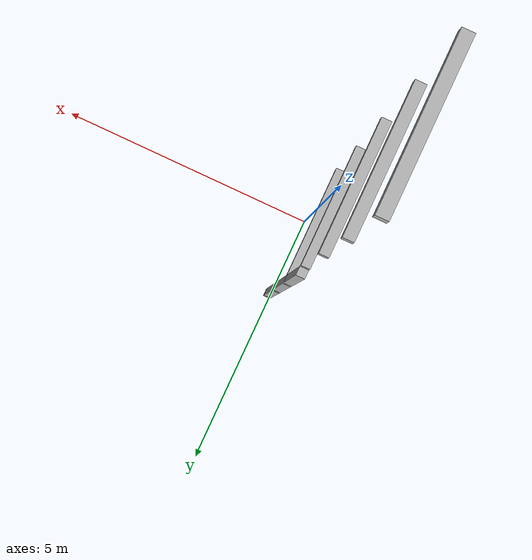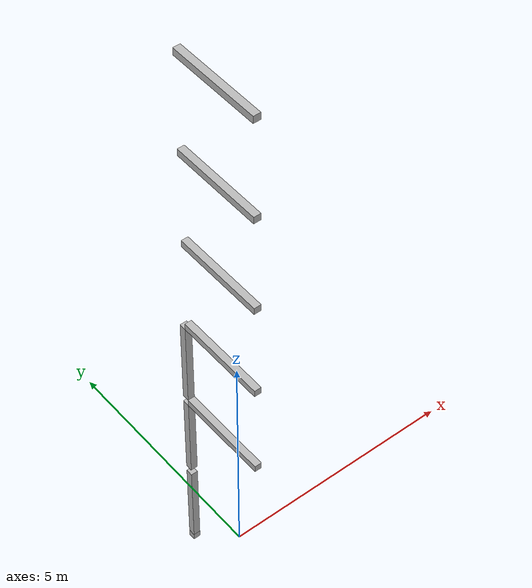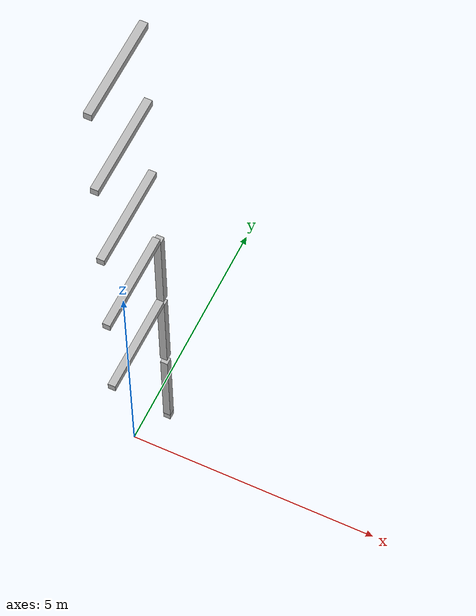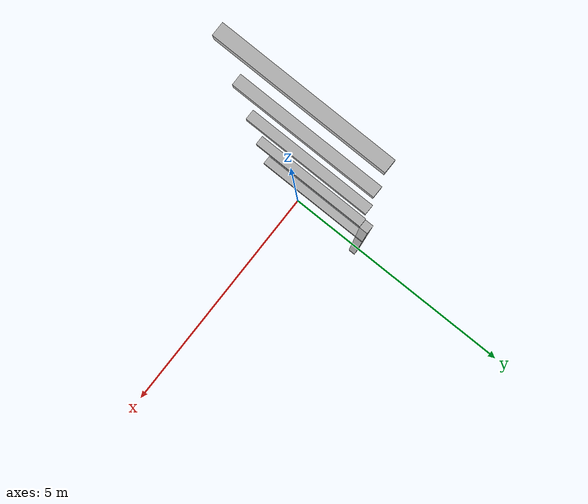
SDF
<sdf version="1.7">
 <world name="default">
  <model name="orthogonal_747_2.000.15_TS">
   <static>1</static>
   <link name="u_link_0_3_3">
    <inertial>
     <mass>1</mass>
     <inertia>
      <ixx>0.166667</ixx>
      <ixy>0</ixy>
      <ixz>0</ixz>
      <iyy>0.166667</iyy>
      <iyz>0</iyz>
      <izz>0.166667</izz>
     </inertia>
    </inertial>
    <pose>6.45 6.45 1.075 0 -0 0</pose>
    <visual name="visual_0">
     <laser_retro>561</laser_retro>
     <geometry><box><size>0.15 1e-06 0.15</size></box></geometry>
     <material>
      <script><name>Gazebo/Grey</name><uri>file://media/materials/scripts/gazebo.material</uri></script>
      <shader type="pixel"><normal_map>__default__</normal_map></shader>
      <ambient>0.678 0.498 0.659 1</ambient>
      <diffuse>0.7 0.7 0.7 1</diffuse>
      <specular>0.01 0.01 0.01 1</specular>
      <emissive>0 0 0 1</emissive>
     </material>
     <pose>0 -0.075 0 0 -0 0</pose>
     <transparency>1</transparency>
    </visual>
    <visual name="visual_1">
     <laser_retro>562</laser_retro>
     <geometry><box><size>0.15 1e-06 0.15</size></box></geometry>
     <material>
      <script><name>Gazebo/Grey</name><uri>file://media/materials/scripts/gazebo.material</uri></script>
      <shader type="pixel"><normal_map>__default__</normal_map></shader>
      <ambient>0.447 0.624 0.812 1</ambient>
      <diffuse>0.7 0.7 0.7 1</diffuse>
      <specular>0.01 0.01 0.01 1</specular>
      <emissive>0 0 0 1</emissive>
     </material>
     <pose>0 0.075 0 0 -0 0</pose>
     <transparency>1</transparency>
    </visual>
    <visual name="visual_2">
     <laser_retro>563</laser_retro>
     <geometry><box><size>0.15 0.15 1e-06</size></box></geometry>
     <material>
      <script><name>Gazebo/Grey</name><uri>file://media/materials/scripts/gazebo.material</uri></script>
      <shader type="pixel"><normal_map>__default__</normal_map></shader>
      <ambient>0.988 0.686 0.243 1</ambient>
      <diffuse>0.7 0.7 0.7 1</diffuse>
      <specular>0.01 0.01 0.01 1</specular>
      <emissive>0 0 0 1</emissive>
     </material>
     <pose>0 0 -0.075 0 -0 0</pose>
     <transparency>1</transparency>
    </visual>
    <visual name="visual_3">
     <laser_retro>564</laser_retro>
     <geometry><box><size>1e-06 0.15 0.15</size></box></geometry>
     <material>
      <script><name>Gazebo/Grey</name><uri>file://media/materials/scripts/gazebo.material</uri></script>
      <shader type="pixel"><normal_map>__default__</normal_map></shader>
      <ambient>0.988 0.914 0.31 1</ambient>
      <diffuse>0.7 0.7 0.7 1</diffuse>
      <specular>0.01 0.01 0.01 1</specular>
      <emissive>0 0 0 1</emissive>
     </material>
     <pose>0.075 0 0 0 -0 0</pose>
     <transparency>1</transparency>
    </visual>
    <visual name="visual_4">
     <laser_retro>565</laser_retro>
     <geometry><box><size>0.15 0.15 1e-06</size></box></geometry>
     <material>
      <script><name>Gazebo/Grey</name><uri>file://media/materials/scripts/gazebo.material</uri></script>
      <shader type="pixel"><normal_map>__default__</normal_map></shader>
      <ambient>0.937 0.161 0.161 1</ambient>
      <diffuse>0.7 0.7 0.7 1</diffuse>
      <specular>0.01 0.01 0.01 1</specular>
      <emissive>0 0 0 1</emissive>
     </material>
     <pose>0 0 0.075 0 -0 0</pose>
     <transparency>1</transparency>
    </visual>
    <visual name="visual_5">
     <laser_retro>566</laser_retro>
     <geometry><box><size>1e-06 0.15 0.15</size></box></geometry>
     <material>
      <script><name>Gazebo/Grey</name><uri>file://media/materials/scripts/gazebo.material</uri></script>
      <shader type="pixel"><normal_map>__default__</normal_map></shader>
      <ambient>0.541 0.886 0.204 1</ambient>
      <diffuse>0.7 0.7 0.7 1</diffuse>
      <specular>0.01 0.01 0.01 1</specular>
      <emissive>0 0 0 1</emissive>
     </material>
     <pose>-0.075 0 0 0 -0 0</pose>
     <transparency>1</transparency>
    </visual>
    <visual name="visual_texture">
     <geometry><box><size>0.149985 0.149985 0.149985</size></box></geometry>
     <material>
      <script>
       <uri>model://BASE_MODELS/simple_block_v2_textured/materials/scripts</uri>
       <uri>model://BASE_MODELS/simple_block_v2_textured/materials/textures</uri>
       <name>metal</name>
      </script>
     </material>
     <laser_retro>567</laser_retro>
    </visual>
    <collision name="collision">
     <geometry><box><size>0.15 0.15 0.15</size></box></geometry>
     <surface>
      <friction>
       <ode><mu>1</mu><mu2>1</mu2><fdir1>0 0 0</fdir1><slip1>0</slip1><slip2>0</slip2></ode>
       <torsional>
        <coefficient>1</coefficient>
        <patch_radius>0</patch_radius>
        <surface_radius>0</surface_radius>
        <use_patch_radius>1</use_patch_radius>
        <ode><slip>0</slip></ode>
       </torsional>
      </friction>
      <bounce><restitution_coefficient>0</restitution_coefficient><threshold>1e+06</threshold></bounce>
      <contact>
       <collide_without_contact>0</collide_without_contact>
       <collide_without_contact_bitmask>1</collide_without_contact_bitmask>
       <collide_bitmask>1</collide_bitmask>
       <ode>
        <soft_cfm>0</soft_cfm>
        <soft_erp>0.2</soft_erp>
        <kp>1e+13</kp>
        <kd>1</kd>
        <max_vel>0.01</max_vel>
        <min_depth>0</min_depth>
       </ode>
       <bullet>
        <split_impulse>1</split_impulse>
        <split_impulse_penetration_threshold>-0.01</split_impulse_penetration_threshold>
        <soft_cfm>0</soft_cfm>
        <soft_erp>0.2</soft_erp>
        <kp>1e+13</kp>
        <kd>1</kd>
       </bullet>
      </contact>
     </surface>
    </collision>
   </link>
   <link name="z_link_1_3_3">
    <inertial>
     <mass>1</mass>
     <inertia>
      <ixx>0.166667</ixx>
      <ixy>0</ixy>
      <ixz>0</ixz>
      <iyy>0.166667</iyy>
      <iyz>0</iyz>
      <izz>0.166667</izz>
     </inertia>
    </inertial>
    <pose>6.45 6.45 2.15 0 -0 0</pose>
    <visual name="visual_0">
     <laser_retro>1401</laser_retro>
     <geometry><box><size>0.15 1e-06 2</size></box></geometry>
     <material>
      <script><name>Gazebo/Grey</name><uri>file://media/materials/scripts/gazebo.material</uri></script>
      <shader type="pixel"><normal_map>__default__</normal_map></shader>
      <ambient>0.678 0.498 0.659 1</ambient>
      <diffuse>0.7 0.7 0.7 1</diffuse>
      <specular>0.01 0.01 0.01 1</specular>
      <emissive>0 0 0 1</emissive>
     </material>
     <pose>0 -0.075 0 0 -0 0</pose>
     <transparency>1</transparency>
    </visual>
    <visual name="visual_1">
     <laser_retro>1402</laser_retro>
     <geometry><box><size>0.15 1e-06 2</size></box></geometry>
     <material>
      <script><name>Gazebo/Grey</name><uri>file://media/materials/scripts/gazebo.material</uri></script>
      <shader type="pixel"><normal_map>__default__</normal_map></shader>
      <ambient>0.447 0.624 0.812 1</ambient>
      <diffuse>0.7 0.7 0.7 1</diffuse>
      <specular>0.01 0.01 0.01 1</specular>
      <emissive>0 0 0 1</emissive>
     </material>
     <pose>0 0.075 0 0 -0 0</pose>
     <transparency>1</transparency>
    </visual>
    <visual name="visual_2">
     <laser_retro>1403</laser_retro>
     <geometry><box><size>0.15 0.15 1e-06</size></box></geometry>
     <material>
      <script><name>Gazebo/Grey</name><uri>file://media/materials/scripts/gazebo.material</uri></script>
      <shader type="pixel"><normal_map>__default__</normal_map></shader>
      <ambient>0.988 0.686 0.243 1</ambient>
      <diffuse>0.7 0.7 0.7 1</diffuse>
      <specular>0.01 0.01 0.01 1</specular>
      <emissive>0 0 0 1</emissive>
     </material>
     <pose>0 0 -1 0 -0 0</pose>
     <transparency>1</transparency>
    </visual>
    <visual name="visual_3">
     <laser_retro>1404</laser_retro>
     <geometry><box><size>1e-06 0.15 2</size></box></geometry>
     <material>
      <script><name>Gazebo/Grey</name><uri>file://media/materials/scripts/gazebo.material</uri></script>
      <shader type="pixel"><normal_map>__default__</normal_map></shader>
      <ambient>0.988 0.914 0.31 1</ambient>
      <diffuse>0.7 0.7 0.7 1</diffuse>
      <specular>0.01 0.01 0.01 1</specular>
      <emissive>0 0 0 1</emissive>
     </material>
     <pose>0.075 0 0 0 -0 0</pose>
     <transparency>1</transparency>
    </visual>
    <visual name="visual_4">
     <laser_retro>1405</laser_retro>
     <geometry><box><size>0.15 0.15 1e-06</size></box></geometry>
     <material>
      <script><name>Gazebo/Grey</name><uri>file://media/materials/scripts/gazebo.material</uri></script>
      <shader type="pixel"><normal_map>__default__</normal_map></shader>
      <ambient>0.937 0.161 0.161 1</ambient>
      <diffuse>0.7 0.7 0.7 1</diffuse>
      <specular>0.01 0.01 0.01 1</specular>
      <emissive>0 0 0 1</emissive>
     </material>
     <pose>0 0 1 0 -0 0</pose>
     <transparency>1</transparency>
    </visual>
    <visual name="visual_5">
     <laser_retro>1406</laser_retro>
     <geometry><box><size>1e-06 0.15 2</size></box></geometry>
     <material>
      <script><name>Gazebo/Grey</name><uri>file://media/materials/scripts/gazebo.material</uri></script>
      <shader type="pixel"><normal_map>__default__</normal_map></shader>
      <ambient>0.541 0.886 0.204 1</ambient>
      <diffuse>0.7 0.7 0.7 1</diffuse>
      <specular>0.01 0.01 0.01 1</specular>
      <emissive>0 0 0 1</emissive>
     </material>
     <pose>-0.075 0 0 0 -0 0</pose>
     <transparency>1</transparency>
    </visual>
    <visual name="visual_texture">
     <geometry><box><size>0.149985 0.149985 1.9998</size></box></geometry>
     <material>
      <script>
       <uri>model://BASE_MODELS/simple_block_v2_textured/materials/scripts</uri>
       <uri>model://BASE_MODELS/simple_block_v2_textured/materials/textures</uri>
       <name>metal</name>
      </script>
     </material>
     <laser_retro>1407</laser_retro>
    </visual>
    <collision name="collision">
     <geometry><box><size>0.15 0.15 2</size></box></geometry>
     <surface>
      <friction>
       <ode><mu>1</mu><mu2>1</mu2><fdir1>0 0 0</fdir1><slip1>0</slip1><slip2>0</slip2></ode>
       <torsional>
        <coefficient>1</coefficient>
        <patch_radius>0</patch_radius>
        <surface_radius>0</surface_radius>
        <use_patch_radius>1</use_patch_radius>
        <ode><slip>0</slip></ode>
       </torsional>
      </friction>
      <bounce><restitution_coefficient>0</restitution_coefficient><threshold>1e+06</threshold></bounce>
      <contact>
       <collide_without_contact>0</collide_without_contact>
       <collide_without_contact_bitmask>1</collide_without_contact_bitmask>
       <collide_bitmask>1</collide_bitmask>
       <ode>
        <soft_cfm>0</soft_cfm>
        <soft_erp>0.2</soft_erp>
        <kp>1e+13</kp>
        <kd>1</kd>
        <max_vel>0.01</max_vel>
        <min_depth>0</min_depth>
       </ode>
       <bullet>
        <split_impulse>1</split_impulse>
        <split_impulse_penetration_threshold>-0.01</split_impulse_penetration_threshold>
        <soft_cfm>0</soft_cfm>
        <soft_erp>0.2</soft_erp>
        <kp>1e+13</kp>
        <kd>1</kd>
       </bullet>
      </contact>
     </surface>
    </collision>
   </link>
   <link name="y_link_2_2_3">
    <inertial>
     <mass>1</mass>
     <inertia>
      <ixx>0.166667</ixx>
      <ixy>0</ixy>
      <ixz>0</ixz>
      <iyy>0.166667</iyy>
      <iyz>0</iyz>
      <izz>0.166667</izz>
     </inertia>
    </inertial>
    <pose>6.45 5.375 5.375 0 -0 0</pose>
    <visual name="visual_0">
     <laser_retro>2122</laser_retro>
     <geometry><box><size>0.15 1e-06 0.15</size></box></geometry>
     <material>
      <script><name>Gazebo/Grey</name><uri>file://media/materials/scripts/gazebo.material</uri></script>
      <shader type="pixel"><normal_map>__default__</normal_map></shader>
      <ambient>0.678 0.498 0.659 1</ambient>
      <diffuse>0.7 0.7 0.7 1</diffuse>
      <specular>0.01 0.01 0.01 1</specular>
      <emissive>0 0 0 1</emissive>
     </material>
     <pose>0 -1 0 0 -0 0</pose>
     <transparency>1</transparency>
    </visual>
    <visual name="visual_1">
     <laser_retro>2123</laser_retro>
     <geometry><box><size>0.15 1e-06 0.15</size></box></geometry>
     <material>
      <script><name>Gazebo/Grey</name><uri>file://media/materials/scripts/gazebo.material</uri></script>
      <shader type="pixel"><normal_map>__default__</normal_map></shader>
      <ambient>0.447 0.624 0.812 1</ambient>
      <diffuse>0.7 0.7 0.7 1</diffuse>
      <specular>0.01 0.01 0.01 1</specular>
      <emissive>0 0 0 1</emissive>
     </material>
     <pose>0 1 0 0 -0 0</pose>
     <transparency>1</transparency>
    </visual>
    <visual name="visual_2">
     <laser_retro>2124</laser_retro>
     <geometry><box><size>0.15 2 1e-06</size></box></geometry>
     <material>
      <script><name>Gazebo/Grey</name><uri>file://media/materials/scripts/gazebo.material</uri></script>
      <shader type="pixel"><normal_map>__default__</normal_map></shader>
      <ambient>0.988 0.686 0.243 1</ambient>
      <diffuse>0.7 0.7 0.7 1</diffuse>
      <specular>0.01 0.01 0.01 1</specular>
      <emissive>0 0 0 1</emissive>
     </material>
     <pose>0 0 -0.075 0 -0 0</pose>
     <transparency>1</transparency>
    </visual>
    <visual name="visual_3">
     <laser_retro>2125</laser_retro>
     <geometry><box><size>1e-06 2 0.15</size></box></geometry>
     <material>
      <script><name>Gazebo/Grey</name><uri>file://media/materials/scripts/gazebo.material</uri></script>
      <shader type="pixel"><normal_map>__default__</normal_map></shader>
      <ambient>0.988 0.914 0.31 1</ambient>
      <diffuse>0.7 0.7 0.7 1</diffuse>
      <specular>0.01 0.01 0.01 1</specular>
      <emissive>0 0 0 1</emissive>
     </material>
     <pose>0.075 0 0 0 -0 0</pose>
     <transparency>1</transparency>
    </visual>
    <visual name="visual_4">
     <laser_retro>2126</laser_retro>
     <geometry><box><size>0.15 2 1e-06</size></box></geometry>
     <material>
      <script><name>Gazebo/Grey</name><uri>file://media/materials/scripts/gazebo.material</uri></script>
      <shader type="pixel"><normal_map>__default__</normal_map></shader>
      <ambient>0.937 0.161 0.161 1</ambient>
      <diffuse>0.7 0.7 0.7 1</diffuse>
      <specular>0.01 0.01 0.01 1</specular>
      <emissive>0 0 0 1</emissive>
     </material>
     <pose>0 0 0.075 0 -0 0</pose>
     <transparency>1</transparency>
    </visual>
    <visual name="visual_5">
     <laser_retro>2127</laser_retro>
     <geometry><box><size>1e-06 2 0.15</size></box></geometry>
     <material>
      <script><name>Gazebo/Grey</name><uri>file://media/materials/scripts/gazebo.material</uri></script>
      <shader type="pixel"><normal_map>__default__</normal_map></shader>
      <ambient>0.541 0.886 0.204 1</ambient>
      <diffuse>0.7 0.7 0.7 1</diffuse>
      <specular>0.01 0.01 0.01 1</specular>
      <emissive>0 0 0 1</emissive>
     </material>
     <pose>-0.075 0 0 0 -0 0</pose>
     <transparency>1</transparency>
    </visual>
    <visual name="visual_texture">
     <geometry><box><size>0.149985 1.9998 0.149985</size></box></geometry>
     <material>
      <script>
       <uri>model://BASE_MODELS/simple_block_v2_textured/materials/scripts</uri>
       <uri>model://BASE_MODELS/simple_block_v2_textured/materials/textures</uri>
       <name>metal</name>
      </script>
     </material>
     <laser_retro>2128</laser_retro>
    </visual>
    <collision name="collision">
     <geometry><box><size>0.15 2 0.15</size></box></geometry>
     <surface>
      <friction>
       <ode><mu>1</mu><mu2>1</mu2><fdir1>0 0 0</fdir1><slip1>0</slip1><slip2>0</slip2></ode>
       <torsional>
        <coefficient>1</coefficient>
        <patch_radius>0</patch_radius>
        <surface_radius>0</surface_radius>
        <use_patch_radius>1</use_patch_radius>
        <ode><slip>0</slip></ode>
       </torsional>
      </friction>
      <bounce><restitution_coefficient>0</restitution_coefficient><threshold>1e+06</threshold></bounce>
      <contact>
       <collide_without_contact>0</collide_without_contact>
       <collide_without_contact_bitmask>1</collide_without_contact_bitmask>
       <collide_bitmask>1</collide_bitmask>
       <ode>
        <soft_cfm>0</soft_cfm>
        <soft_erp>0.2</soft_erp>
        <kp>1e+13</kp>
        <kd>1</kd>
        <max_vel>0.01</max_vel>
        <min_depth>0</min_depth>
       </ode>
       <bullet>
        <split_impulse>1</split_impulse>
        <split_impulse_penetration_threshold>-0.01</split_impulse_penetration_threshold>
        <soft_cfm>0</soft_cfm>
        <soft_erp>0.2</soft_erp>
        <kp>1e+13</kp>
        <kd>1</kd>
       </bullet>
      </contact>
     </surface>
    </collision>
   </link>
   <link name="z_link_2_3_3">
    <inertial>
     <mass>1</mass>
     <inertia>
      <ixx>0.166667</ixx>
      <ixy>0</ixy>
      <ixz>0</ixz>
      <iyy>0.166667</iyy>
      <iyz>0</iyz>
      <izz>0.166667</izz>
     </inertia>
    </inertial>
    <pose>6.45 6.45 4.3 0 -0 0</pose>
    <visual name="visual_0">
     <laser_retro>2304</laser_retro>
     <geometry><box><size>0.15 1e-06 2</size></box></geometry>
     <material>
      <script><name>Gazebo/Grey</name><uri>file://media/materials/scripts/gazebo.material</uri></script>
      <shader type="pixel"><normal_map>__default__</normal_map></shader>
      <ambient>0.678 0.498 0.659 1</ambient>
      <diffuse>0.7 0.7 0.7 1</diffuse>
      <specular>0.01 0.01 0.01 1</specular>
      <emissive>0 0 0 1</emissive>
     </material>
     <pose>0 -0.075 0 0 -0 0</pose>
     <transparency>1</transparency>
    </visual>
    <visual name="visual_1">
     <laser_retro>2305</laser_retro>
     <geometry><box><size>0.15 1e-06 2</size></box></geometry>
     <material>
      <script><name>Gazebo/Grey</name><uri>file://media/materials/scripts/gazebo.material</uri></script>
      <shader type="pixel"><normal_map>__default__</normal_map></shader>
      <ambient>0.447 0.624 0.812 1</ambient>
      <diffuse>0.7 0.7 0.7 1</diffuse>
      <specular>0.01 0.01 0.01 1</specular>
      <emissive>0 0 0 1</emissive>
     </material>
     <pose>0 0.075 0 0 -0 0</pose>
     <transparency>1</transparency>
    </visual>
    <visual name="visual_2">
     <laser_retro>2306</laser_retro>
     <geometry><box><size>0.15 0.15 1e-06</size></box></geometry>
     <material>
      <script><name>Gazebo/Grey</name><uri>file://media/materials/scripts/gazebo.material</uri></script>
      <shader type="pixel"><normal_map>__default__</normal_map></shader>
      <ambient>0.988 0.686 0.243 1</ambient>
      <diffuse>0.7 0.7 0.7 1</diffuse>
      <specular>0.01 0.01 0.01 1</specular>
      <emissive>0 0 0 1</emissive>
     </material>
     <pose>0 0 -1 0 -0 0</pose>
     <transparency>1</transparency>
    </visual>
    <visual name="visual_3">
     <laser_retro>2307</laser_retro>
     <geometry><box><size>1e-06 0.15 2</size></box></geometry>
     <material>
      <script><name>Gazebo/Grey</name><uri>file://media/materials/scripts/gazebo.material</uri></script>
      <shader type="pixel"><normal_map>__default__</normal_map></shader>
      <ambient>0.988 0.914 0.31 1</ambient>
      <diffuse>0.7 0.7 0.7 1</diffuse>
      <specular>0.01 0.01 0.01 1</specular>
      <emissive>0 0 0 1</emissive>
     </material>
     <pose>0.075 0 0 0 -0 0</pose>
     <transparency>1</transparency>
    </visual>
    <visual name="visual_4">
     <laser_retro>2308</laser_retro>
     <geometry><box><size>0.15 0.15 1e-06</size></box></geometry>
     <material>
      <script><name>Gazebo/Grey</name><uri>file://media/materials/scripts/gazebo.material</uri></script>
      <shader type="pixel"><normal_map>__default__</normal_map></shader>
      <ambient>0.937 0.161 0.161 1</ambient>
      <diffuse>0.7 0.7 0.7 1</diffuse>
      <specular>0.01 0.01 0.01 1</specular>
      <emissive>0 0 0 1</emissive>
     </material>
     <pose>0 0 1 0 -0 0</pose>
     <transparency>1</transparency>
    </visual>
    <visual name="visual_5">
     <laser_retro>2309</laser_retro>
     <geometry><box><size>1e-06 0.15 2</size></box></geometry>
     <material>
      <script><name>Gazebo/Grey</name><uri>file://media/materials/scripts/gazebo.material</uri></script>
      <shader type="pixel"><normal_map>__default__</normal_map></shader>
      <ambient>0.541 0.886 0.204 1</ambient>
      <diffuse>0.7 0.7 0.7 1</diffuse>
      <specular>0.01 0.01 0.01 1</specular>
      <emissive>0 0 0 1</emissive>
     </material>
     <pose>-0.075 0 0 0 -0 0</pose>
     <transparency>1</transparency>
    </visual>
    <visual name="visual_texture">
     <geometry><box><size>0.149985 0.149985 1.9998</size></box></geometry>
     <material>
      <script>
       <uri>model://BASE_MODELS/simple_block_v2_textured/materials/scripts</uri>
       <uri>model://BASE_MODELS/simple_block_v2_textured/materials/textures</uri>
       <name>metal</name>
      </script>
     </material>
     <laser_retro>2310</laser_retro>
    </visual>
    <collision name="collision">
     <geometry><box><size>0.15 0.15 2</size></box></geometry>
     <surface>
      <friction>
       <ode><mu>1</mu><mu2>1</mu2><fdir1>0 0 0</fdir1><slip1>0</slip1><slip2>0</slip2></ode>
       <torsional>
        <coefficient>1</coefficient>
        <patch_radius>0</patch_radius>
        <surface_radius>0</surface_radius>
        <use_patch_radius>1</use_patch_radius>
        <ode><slip>0</slip></ode>
       </torsional>
      </friction>
      <bounce><restitution_coefficient>0</restitution_coefficient><threshold>1e+06</threshold></bounce>
      <contact>
       <collide_without_contact>0</collide_without_contact>
       <collide_without_contact_bitmask>1</collide_without_contact_bitmask>
       <collide_bitmask>1</collide_bitmask>
       <ode>
        <soft_cfm>0</soft_cfm>
        <soft_erp>0.2</soft_erp>
        <kp>1e+13</kp>
        <kd>1</kd>
        <max_vel>0.01</max_vel>
        <min_depth>0</min_depth>
       </ode>
       <bullet>
        <split_impulse>1</split_impulse>
        <split_impulse_penetration_threshold>-0.01</split_impulse_penetration_threshold>
        <soft_cfm>0</soft_cfm>
        <soft_erp>0.2</soft_erp>
        <kp>1e+13</kp>
        <kd>1</kd>
       </bullet>
      </contact>
     </surface>
    </collision>
   </link>
   <link name="y_link_3_2_3">
    <inertial>
     <mass>1</mass>
     <inertia>
      <ixx>0.166667</ixx>
      <ixy>0</ixy>
      <ixz>0</ixz>
      <iyy>0.166667</iyy>
      <iyz>0</iyz>
      <izz>0.166667</izz>
     </inertia>
    </inertial>
    <pose>6.45 5.375 7.525 0 -0 0</pose>
    <visual name="visual_0">
     <laser_retro>3025</laser_retro>
     <geometry><box><size>0.15 1e-06 0.15</size></box></geometry>
     <material>
      <script><name>Gazebo/Grey</name><uri>file://media/materials/scripts/gazebo.material</uri></script>
      <shader type="pixel"><normal_map>__default__</normal_map></shader>
      <ambient>0.678 0.498 0.659 1</ambient>
      <diffuse>0.7 0.7 0.7 1</diffuse>
      <specular>0.01 0.01 0.01 1</specular>
      <emissive>0 0 0 1</emissive>
     </material>
     <pose>0 -1 0 0 -0 0</pose>
     <transparency>1</transparency>
    </visual>
    <visual name="visual_1">
     <laser_retro>3026</laser_retro>
     <geometry><box><size>0.15 1e-06 0.15</size></box></geometry>
     <material>
      <script><name>Gazebo/Grey</name><uri>file://media/materials/scripts/gazebo.material</uri></script>
      <shader type="pixel"><normal_map>__default__</normal_map></shader>
      <ambient>0.447 0.624 0.812 1</ambient>
      <diffuse>0.7 0.7 0.7 1</diffuse>
      <specular>0.01 0.01 0.01 1</specular>
      <emissive>0 0 0 1</emissive>
     </material>
     <pose>0 1 0 0 -0 0</pose>
     <transparency>1</transparency>
    </visual>
    <visual name="visual_2">
     <laser_retro>3027</laser_retro>
     <geometry><box><size>0.15 2 1e-06</size></box></geometry>
     <material>
      <script><name>Gazebo/Grey</name><uri>file://media/materials/scripts/gazebo.material</uri></script>
      <shader type="pixel"><normal_map>__default__</normal_map></shader>
      <ambient>0.988 0.686 0.243 1</ambient>
      <diffuse>0.7 0.7 0.7 1</diffuse>
      <specular>0.01 0.01 0.01 1</specular>
      <emissive>0 0 0 1</emissive>
     </material>
     <pose>0 0 -0.075 0 -0 0</pose>
     <transparency>1</transparency>
    </visual>
    <visual name="visual_3">
     <laser_retro>3028</laser_retro>
     <geometry><box><size>1e-06 2 0.15</size></box></geometry>
     <material>
      <script><name>Gazebo/Grey</name><uri>file://media/materials/scripts/gazebo.material</uri></script>
      <shader type="pixel"><normal_map>__default__</normal_map></shader>
      <ambient>0.988 0.914 0.31 1</ambient>
      <diffuse>0.7 0.7 0.7 1</diffuse>
      <specular>0.01 0.01 0.01 1</specular>
      <emissive>0 0 0 1</emissive>
     </material>
     <pose>0.075 0 0 0 -0 0</pose>
     <transparency>1</transparency>
    </visual>
    <visual name="visual_4">
     <laser_retro>3029</laser_retro>
     <geometry><box><size>0.15 2 1e-06</size></box></geometry>
     <material>
      <script><name>Gazebo/Grey</name><uri>file://media/materials/scripts/gazebo.material</uri></script>
      <shader type="pixel"><normal_map>__default__</normal_map></shader>
      <ambient>0.937 0.161 0.161 1</ambient>
      <diffuse>0.7 0.7 0.7 1</diffuse>
      <specular>0.01 0.01 0.01 1</specular>
      <emissive>0 0 0 1</emissive>
     </material>
     <pose>0 0 0.075 0 -0 0</pose>
     <transparency>1</transparency>
    </visual>
    <visual name="visual_5">
     <laser_retro>3030</laser_retro>
     <geometry><box><size>1e-06 2 0.15</size></box></geometry>
     <material>
      <script><name>Gazebo/Grey</name><uri>file://media/materials/scripts/gazebo.material</uri></script>
      <shader type="pixel"><normal_map>__default__</normal_map></shader>
      <ambient>0.541 0.886 0.204 1</ambient>
      <diffuse>0.7 0.7 0.7 1</diffuse>
      <specular>0.01 0.01 0.01 1</specular>
      <emissive>0 0 0 1</emissive>
     </material>
     <pose>-0.075 0 0 0 -0 0</pose>
     <transparency>1</transparency>
    </visual>
    <visual name="visual_texture">
     <geometry><box><size>0.149985 1.9998 0.149985</size></box></geometry>
     <material>
      <script>
       <uri>model://BASE_MODELS/simple_block_v2_textured/materials/scripts</uri>
       <uri>model://BASE_MODELS/simple_block_v2_textured/materials/textures</uri>
       <name>metal</name>
      </script>
     </material>
     <laser_retro>3031</laser_retro>
    </visual>
    <collision name="collision">
     <geometry><box><size>0.15 2 0.15</size></box></geometry>
     <surface>
      <friction>
       <ode><mu>1</mu><mu2>1</mu2><fdir1>0 0 0</fdir1><slip1>0</slip1><slip2>0</slip2></ode>
       <torsional>
        <coefficient>1</coefficient>
        <patch_radius>0</patch_radius>
        <surface_radius>0</surface_radius>
        <use_patch_radius>1</use_patch_radius>
        <ode><slip>0</slip></ode>
       </torsional>
      </friction>
      <bounce><restitution_coefficient>0</restitution_coefficient><threshold>1e+06</threshold></bounce>
      <contact>
       <collide_without_contact>0</collide_without_contact>
       <collide_without_contact_bitmask>1</collide_without_contact_bitmask>
       <collide_bitmask>1</collide_bitmask>
       <ode>
        <soft_cfm>0</soft_cfm>
        <soft_erp>0.2</soft_erp>
        <kp>1e+13</kp>
        <kd>1</kd>
        <max_vel>0.01</max_vel>
        <min_depth>0</min_depth>
       </ode>
       <bullet>
        <split_impulse>1</split_impulse>
        <split_impulse_penetration_threshold>-0.01</split_impulse_penetration_threshold>
        <soft_cfm>0</soft_cfm>
        <soft_erp>0.2</soft_erp>
        <kp>1e+13</kp>
        <kd>1</kd>
       </bullet>
      </contact>
     </surface>
    </collision>
   </link>
   <link name="z_link_3_3_3">
    <inertial>
     <mass>1</mass>
     <inertia>
      <ixx>0.166667</ixx>
      <ixy>0</ixy>
      <ixz>0</ixz>
      <iyy>0.166667</iyy>
      <iyz>0</iyz>
      <izz>0.166667</izz>
     </inertia>
    </inertial>
    <pose>6.45 6.45 6.45 0 -0 0</pose>
    <visual name="visual_0">
     <laser_retro>3207</laser_retro>
     <geometry><box><size>0.15 1e-06 2</size></box></geometry>
     <material>
      <script><name>Gazebo/Grey</name><uri>file://media/materials/scripts/gazebo.material</uri></script>
      <shader type="pixel"><normal_map>__default__</normal_map></shader>
      <ambient>0.678 0.498 0.659 1</ambient>
      <diffuse>0.7 0.7 0.7 1</diffuse>
      <specular>0.01 0.01 0.01 1</specular>
      <emissive>0 0 0 1</emissive>
     </material>
     <pose>0 -0.075 0 0 -0 0</pose>
     <transparency>1</transparency>
    </visual>
    <visual name="visual_1">
     <laser_retro>3208</laser_retro>
     <geometry><box><size>0.15 1e-06 2</size></box></geometry>
     <material>
      <script><name>Gazebo/Grey</name><uri>file://media/materials/scripts/gazebo.material</uri></script>
      <shader type="pixel"><normal_map>__default__</normal_map></shader>
      <ambient>0.447 0.624 0.812 1</ambient>
      <diffuse>0.7 0.7 0.7 1</diffuse>
      <specular>0.01 0.01 0.01 1</specular>
      <emissive>0 0 0 1</emissive>
     </material>
     <pose>0 0.075 0 0 -0 0</pose>
     <transparency>1</transparency>
    </visual>
    <visual name="visual_2">
     <laser_retro>3209</laser_retro>
     <geometry><box><size>0.15 0.15 1e-06</size></box></geometry>
     <material>
      <script><name>Gazebo/Grey</name><uri>file://media/materials/scripts/gazebo.material</uri></script>
      <shader type="pixel"><normal_map>__default__</normal_map></shader>
      <ambient>0.988 0.686 0.243 1</ambient>
      <diffuse>0.7 0.7 0.7 1</diffuse>
      <specular>0.01 0.01 0.01 1</specular>
      <emissive>0 0 0 1</emissive>
     </material>
     <pose>0 0 -1 0 -0 0</pose>
     <transparency>1</transparency>
    </visual>
    <visual name="visual_3">
     <laser_retro>3210</laser_retro>
     <geometry><box><size>1e-06 0.15 2</size></box></geometry>
     <material>
      <script><name>Gazebo/Grey</name><uri>file://media/materials/scripts/gazebo.material</uri></script>
      <shader type="pixel"><normal_map>__default__</normal_map></shader>
      <ambient>0.988 0.914 0.31 1</ambient>
      <diffuse>0.7 0.7 0.7 1</diffuse>
      <specular>0.01 0.01 0.01 1</specular>
      <emissive>0 0 0 1</emissive>
     </material>
     <pose>0.075 0 0 0 -0 0</pose>
     <transparency>1</transparency>
    </visual>
    <visual name="visual_4">
     <laser_retro>3211</laser_retro>
     <geometry><box><size>0.15 0.15 1e-06</size></box></geometry>
     <material>
      <script><name>Gazebo/Grey</name><uri>file://media/materials/scripts/gazebo.material</uri></script>
      <shader type="pixel"><normal_map>__default__</normal_map></shader>
      <ambient>0.937 0.161 0.161 1</ambient>
      <diffuse>0.7 0.7 0.7 1</diffuse>
      <specular>0.01 0.01 0.01 1</specular>
      <emissive>0 0 0 1</emissive>
     </material>
     <pose>0 0 1 0 -0 0</pose>
     <transparency>1</transparency>
    </visual>
    <visual name="visual_5">
     <laser_retro>3212</laser_retro>
     <geometry><box><size>1e-06 0.15 2</size></box></geometry>
     <material>
      <script><name>Gazebo/Grey</name><uri>file://media/materials/scripts/gazebo.material</uri></script>
      <shader type="pixel"><normal_map>__default__</normal_map></shader>
      <ambient>0.541 0.886 0.204 1</ambient>
      <diffuse>0.7 0.7 0.7 1</diffuse>
      <specular>0.01 0.01 0.01 1</specular>
      <emissive>0 0 0 1</emissive>
     </material>
     <pose>-0.075 0 0 0 -0 0</pose>
     <transparency>1</transparency>
    </visual>
    <visual name="visual_texture">
     <geometry><box><size>0.149985 0.149985 1.9998</size></box></geometry>
     <material>
      <script>
       <uri>model://BASE_MODELS/simple_block_v2_textured/materials/scripts</uri>
       <uri>model://BASE_MODELS/simple_block_v2_textured/materials/textures</uri>
       <name>metal</name>
      </script>
     </material>
     <laser_retro>3213</laser_retro>
    </visual>
    <collision name="collision">
     <geometry><box><size>0.15 0.15 2</size></box></geometry>
     <surface>
      <friction>
       <ode><mu>1</mu><mu2>1</mu2><fdir1>0 0 0</fdir1><slip1>0</slip1><slip2>0</slip2></ode>
       <torsional>
        <coefficient>1</coefficient>
        <patch_radius>0</patch_radius>
        <surface_radius>0</surface_radius>
        <use_patch_radius>1</use_patch_radius>
        <ode><slip>0</slip></ode>
       </torsional>
      </friction>
      <bounce><restitution_coefficient>0</restitution_coefficient><threshold>1e+06</threshold></bounce>
      <contact>
       <collide_without_contact>0</collide_without_contact>
       <collide_without_contact_bitmask>1</collide_without_contact_bitmask>
       <collide_bitmask>1</collide_bitmask>
       <ode>
        <soft_cfm>0</soft_cfm>
        <soft_erp>0.2</soft_erp>
        <kp>1e+13</kp>
        <kd>1</kd>
        <max_vel>0.01</max_vel>
        <min_depth>0</min_depth>
       </ode>
       <bullet>
        <split_impulse>1</split_impulse>
        <split_impulse_penetration_threshold>-0.01</split_impulse_penetration_threshold>
        <soft_cfm>0</soft_cfm>
        <soft_erp>0.2</soft_erp>
        <kp>1e+13</kp>
        <kd>1</kd>
       </bullet>
      </contact>
     </surface>
    </collision>
   </link>
   <link name="y_link_4_2_3">
    <inertial>
     <mass>1</mass>
     <inertia>
      <ixx>0.166667</ixx>
      <ixy>0</ixy>
      <ixz>0</ixz>
      <iyy>0.166667</iyy>
      <iyz>0</iyz>
      <izz>0.166667</izz>
     </inertia>
    </inertial>
    <pose>6.45 5.375 9.675 0 -0 0</pose>
    <visual name="visual_0">
     <laser_retro>3928</laser_retro>
     <geometry><box><size>0.15 1e-06 0.15</size></box></geometry>
     <material>
      <script><name>Gazebo/Grey</name><uri>file://media/materials/scripts/gazebo.material</uri></script>
      <shader type="pixel"><normal_map>__default__</normal_map></shader>
      <ambient>0.678 0.498 0.659 1</ambient>
      <diffuse>0.7 0.7 0.7 1</diffuse>
      <specular>0.01 0.01 0.01 1</specular>
      <emissive>0 0 0 1</emissive>
     </material>
     <pose>0 -1 0 0 -0 0</pose>
     <transparency>1</transparency>
    </visual>
    <visual name="visual_1">
     <laser_retro>3929</laser_retro>
     <geometry><box><size>0.15 1e-06 0.15</size></box></geometry>
     <material>
      <script><name>Gazebo/Grey</name><uri>file://media/materials/scripts/gazebo.material</uri></script>
      <shader type="pixel"><normal_map>__default__</normal_map></shader>
      <ambient>0.447 0.624 0.812 1</ambient>
      <diffuse>0.7 0.7 0.7 1</diffuse>
      <specular>0.01 0.01 0.01 1</specular>
      <emissive>0 0 0 1</emissive>
     </material>
     <pose>0 1 0 0 -0 0</pose>
     <transparency>1</transparency>
    </visual>
    <visual name="visual_2">
     <laser_retro>3930</laser_retro>
     <geometry><box><size>0.15 2 1e-06</size></box></geometry>
     <material>
      <script><name>Gazebo/Grey</name><uri>file://media/materials/scripts/gazebo.material</uri></script>
      <shader type="pixel"><normal_map>__default__</normal_map></shader>
      <ambient>0.988 0.686 0.243 1</ambient>
      <diffuse>0.7 0.7 0.7 1</diffuse>
      <specular>0.01 0.01 0.01 1</specular>
      <emissive>0 0 0 1</emissive>
     </material>
     <pose>0 0 -0.075 0 -0 0</pose>
     <transparency>1</transparency>
    </visual>
    <visual name="visual_3">
     <laser_retro>3931</laser_retro>
     <geometry><box><size>1e-06 2 0.15</size></box></geometry>
     <material>
      <script><name>Gazebo/Grey</name><uri>file://media/materials/scripts/gazebo.material</uri></script>
      <shader type="pixel"><normal_map>__default__</normal_map></shader>
      <ambient>0.988 0.914 0.31 1</ambient>
      <diffuse>0.7 0.7 0.7 1</diffuse>
      <specular>0.01 0.01 0.01 1</specular>
      <emissive>0 0 0 1</emissive>
     </material>
     <pose>0.075 0 0 0 -0 0</pose>
     <transparency>1</transparency>
    </visual>
    <visual name="visual_4">
     <laser_retro>3932</laser_retro>
     <geometry><box><size>0.15 2 1e-06</size></box></geometry>
     <material>
      <script><name>Gazebo/Grey</name><uri>file://media/materials/scripts/gazebo.material</uri></script>
      <shader type="pixel"><normal_map>__default__</normal_map></shader>
      <ambient>0.937 0.161 0.161 1</ambient>
      <diffuse>0.7 0.7 0.7 1</diffuse>
      <specular>0.01 0.01 0.01 1</specular>
      <emissive>0 0 0 1</emissive>
     </material>
     <pose>0 0 0.075 0 -0 0</pose>
     <transparency>1</transparency>
    </visual>
    <visual name="visual_5">
     <laser_retro>3933</laser_retro>
     <geometry><box><size>1e-06 2 0.15</size></box></geometry>
     <material>
      <script><name>Gazebo/Grey</name><uri>file://media/materials/scripts/gazebo.material</uri></script>
      <shader type="pixel"><normal_map>__default__</normal_map></shader>
      <ambient>0.541 0.886 0.204 1</ambient>
      <diffuse>0.7 0.7 0.7 1</diffuse>
      <specular>0.01 0.01 0.01 1</specular>
      <emissive>0 0 0 1</emissive>
     </material>
     <pose>-0.075 0 0 0 -0 0</pose>
     <transparency>1</transparency>
    </visual>
    <visual name="visual_texture">
     <geometry><box><size>0.149985 1.9998 0.149985</size></box></geometry>
     <material>
      <script>
       <uri>model://BASE_MODELS/simple_block_v2_textured/materials/scripts</uri>
       <uri>model://BASE_MODELS/simple_block_v2_textured/materials/textures</uri>
       <name>metal</name>
      </script>
     </material>
     <laser_retro>3934</laser_retro>
    </visual>
    <collision name="collision">
     <geometry><box><size>0.15 2 0.15</size></box></geometry>
     <surface>
      <friction>
       <ode><mu>1</mu><mu2>1</mu2><fdir1>0 0 0</fdir1><slip1>0</slip1><slip2>0</slip2></ode>
       <torsional>
        <coefficient>1</coefficient>
        <patch_radius>0</patch_radius>
        <surface_radius>0</surface_radius>
        <use_patch_radius>1</use_patch_radius>
        <ode><slip>0</slip></ode>
       </torsional>
      </friction>
      <bounce><restitution_coefficient>0</restitution_coefficient><threshold>1e+06</threshold></bounce>
      <contact>
       <collide_without_contact>0</collide_without_contact>
       <collide_without_contact_bitmask>1</collide_without_contact_bitmask>
       <collide_bitmask>1</collide_bitmask>
       <ode>
        <soft_cfm>0</soft_cfm>
        <soft_erp>0.2</soft_erp>
        <kp>1e+13</kp>
        <kd>1</kd>
        <max_vel>0.01</max_vel>
        <min_depth>0</min_depth>
       </ode>
       <bullet>
        <split_impulse>1</split_impulse>
        <split_impulse_penetration_threshold>-0.01</split_impulse_penetration_threshold>
        <soft_cfm>0</soft_cfm>
        <soft_erp>0.2</soft_erp>
        <kp>1e+13</kp>
        <kd>1</kd>
       </bullet>
      </contact>
     </surface>
    </collision>
   </link>
   <link name="y_link_5_2_3">
    <inertial>
     <mass>1</mass>
     <inertia>
      <ixx>0.166667</ixx>
      <ixy>0</ixy>
      <ixz>0</ixz>
      <iyy>0.166667</iyy>
      <iyz>0</iyz>
      <izz>0.166667</izz>
     </inertia>
    </inertial>
    <pose>6.45 5.375 11.825 0 -0 0</pose>
    <visual name="visual_0">
     <laser_retro>4831</laser_retro>
     <geometry><box><size>0.15 1e-06 0.15</size></box></geometry>
     <material>
      <script><name>Gazebo/Grey</name><uri>file://media/materials/scripts/gazebo.material</uri></script>
      <shader type="pixel"><normal_map>__default__</normal_map></shader>
      <ambient>0.678 0.498 0.659 1</ambient>
      <diffuse>0.7 0.7 0.7 1</diffuse>
      <specular>0.01 0.01 0.01 1</specular>
      <emissive>0 0 0 1</emissive>
     </material>
     <pose>0 -1 0 0 -0 0</pose>
     <transparency>1</transparency>
    </visual>
    <visual name="visual_1">
     <laser_retro>4832</laser_retro>
     <geometry><box><size>0.15 1e-06 0.15</size></box></geometry>
     <material>
      <script><name>Gazebo/Grey</name><uri>file://media/materials/scripts/gazebo.material</uri></script>
      <shader type="pixel"><normal_map>__default__</normal_map></shader>
      <ambient>0.447 0.624 0.812 1</ambient>
      <diffuse>0.7 0.7 0.7 1</diffuse>
      <specular>0.01 0.01 0.01 1</specular>
      <emissive>0 0 0 1</emissive>
     </material>
     <pose>0 1 0 0 -0 0</pose>
     <transparency>1</transparency>
    </visual>
    <visual name="visual_2">
     <laser_retro>4833</laser_retro>
     <geometry><box><size>0.15 2 1e-06</size></box></geometry>
     <material>
      <script><name>Gazebo/Grey</name><uri>file://media/materials/scripts/gazebo.material</uri></script>
      <shader type="pixel"><normal_map>__default__</normal_map></shader>
      <ambient>0.988 0.686 0.243 1</ambient>
      <diffuse>0.7 0.7 0.7 1</diffuse>
      <specular>0.01 0.01 0.01 1</specular>
      <emissive>0 0 0 1</emissive>
     </material>
     <pose>0 0 -0.075 0 -0 0</pose>
     <transparency>1</transparency>
    </visual>
    <visual name="visual_3">
     <laser_retro>4834</laser_retro>
     <geometry><box><size>1e-06 2 0.15</size></box></geometry>
     <material>
      <script><name>Gazebo/Grey</name><uri>file://media/materials/scripts/gazebo.material</uri></script>
      <shader type="pixel"><normal_map>__default__</normal_map></shader>
      <ambient>0.988 0.914 0.31 1</ambient>
      <diffuse>0.7 0.7 0.7 1</diffuse>
      <specular>0.01 0.01 0.01 1</specular>
      <emissive>0 0 0 1</emissive>
     </material>
     <pose>0.075 0 0 0 -0 0</pose>
     <transparency>1</transparency>
    </visual>
    <visual name="visual_4">
     <laser_retro>4835</laser_retro>
     <geometry><box><size>0.15 2 1e-06</size></box></geometry>
     <material>
      <script><name>Gazebo/Grey</name><uri>file://media/materials/scripts/gazebo.material</uri></script>
      <shader type="pixel"><normal_map>__default__</normal_map></shader>
      <ambient>0.937 0.161 0.161 1</ambient>
      <diffuse>0.7 0.7 0.7 1</diffuse>
      <specular>0.01 0.01 0.01 1</specular>
      <emissive>0 0 0 1</emissive>
     </material>
     <pose>0 0 0.075 0 -0 0</pose>
     <transparency>1</transparency>
    </visual>
    <visual name="visual_5">
     <laser_retro>4836</laser_retro>
     <geometry><box><size>1e-06 2 0.15</size></box></geometry>
     <material>
      <script><name>Gazebo/Grey</name><uri>file://media/materials/scripts/gazebo.material</uri></script>
      <shader type="pixel"><normal_map>__default__</normal_map></shader>
      <ambient>0.541 0.886 0.204 1</ambient>
      <diffuse>0.7 0.7 0.7 1</diffuse>
      <specular>0.01 0.01 0.01 1</specular>
      <emissive>0 0 0 1</emissive>
     </material>
     <pose>-0.075 0 0 0 -0 0</pose>
     <transparency>1</transparency>
    </visual>
    <visual name="visual_texture">
     <geometry><box><size>0.149985 1.9998 0.149985</size></box></geometry>
     <material>
      <script>
       <uri>model://BASE_MODELS/simple_block_v2_textured/materials/scripts</uri>
       <uri>model://BASE_MODELS/simple_block_v2_textured/materials/textures</uri>
       <name>metal</name>
      </script>
     </material>
     <laser_retro>4837</laser_retro>
    </visual>
    <collision name="collision">
     <geometry><box><size>0.15 2 0.15</size></box></geometry>
     <surface>
      <friction>
       <ode><mu>1</mu><mu2>1</mu2><fdir1>0 0 0</fdir1><slip1>0</slip1><slip2>0</slip2></ode>
       <torsional>
        <coefficient>1</coefficient>
        <patch_radius>0</patch_radius>
        <surface_radius>0</surface_radius>
        <use_patch_radius>1</use_patch_radius>
        <ode><slip>0</slip></ode>
       </torsional>
      </friction>
      <bounce><restitution_coefficient>0</restitution_coefficient><threshold>1e+06</threshold></bounce>
      <contact>
       <collide_without_contact>0</collide_without_contact>
       <collide_without_contact_bitmask>1</collide_without_contact_bitmask>
       <collide_bitmask>1</collide_bitmask>
       <ode>
        <soft_cfm>0</soft_cfm>
        <soft_erp>0.2</soft_erp>
        <kp>1e+13</kp>
        <kd>1</kd>
        <max_vel>0.01</max_vel>
        <min_depth>0</min_depth>
       </ode>
       <bullet>
        <split_impulse>1</split_impulse>
        <split_impulse_penetration_threshold>-0.01</split_impulse_penetration_threshold>
        <soft_cfm>0</soft_cfm>
        <soft_erp>0.2</soft_erp>
        <kp>1e+13</kp>
        <kd>1</kd>
       </bullet>
      </contact>
     </surface>
    </collision>
   </link>
   <link name="y_link_6_2_3">
    <inertial>
     <mass>1</mass>
     <inertia>
      <ixx>0.166667</ixx>
      <ixy>0</ixy>
      <ixz>0</ixz>
      <iyy>0.166667</iyy>
      <iyz>0</iyz>
      <izz>0.166667</izz>
     </inertia>
    </inertial>
    <pose>6.45 5.375 13.975 0 -0 0</pose>
    <visual name="visual_0">
     <laser_retro>5790</laser_retro>
     <geometry><box><size>0.15 1e-06 0.15</size></box></geometry>
     <material>
      <script><name>Gazebo/Grey</name><uri>file://media/materials/scripts/gazebo.material</uri></script>
      <shader type="pixel"><normal_map>__default__</normal_map></shader>
      <ambient>0.678 0.498 0.659 1</ambient>
      <diffuse>0.7 0.7 0.7 1</diffuse>
      <specular>0.01 0.01 0.01 1</specular>
      <emissive>0 0 0 1</emissive>
     </material>
     <pose>0 -1 0 0 -0 0</pose>
     <transparency>1</transparency>
    </visual>
    <visual name="visual_1">
     <laser_retro>5791</laser_retro>
     <geometry><box><size>0.15 1e-06 0.15</size></box></geometry>
     <material>
      <script><name>Gazebo/Grey</name><uri>file://media/materials/scripts/gazebo.material</uri></script>
      <shader type="pixel"><normal_map>__default__</normal_map></shader>
      <ambient>0.447 0.624 0.812 1</ambient>
      <diffuse>0.7 0.7 0.7 1</diffuse>
      <specular>0.01 0.01 0.01 1</specular>
      <emissive>0 0 0 1</emissive>
     </material>
     <pose>0 1 0 0 -0 0</pose>
     <transparency>1</transparency>
    </visual>
    <visual name="visual_2">
     <laser_retro>5792</laser_retro>
     <geometry><box><size>0.15 2 1e-06</size></box></geometry>
     <material>
      <script><name>Gazebo/Grey</name><uri>file://media/materials/scripts/gazebo.material</uri></script>
      <shader type="pixel"><normal_map>__default__</normal_map></shader>
      <ambient>0.988 0.686 0.243 1</ambient>
      <diffuse>0.7 0.7 0.7 1</diffuse>
      <specular>0.01 0.01 0.01 1</specular>
      <emissive>0 0 0 1</emissive>
     </material>
     <pose>0 0 -0.075 0 -0 0</pose>
     <transparency>1</transparency>
    </visual>
    <visual name="visual_3">
     <laser_retro>5793</laser_retro>
     <geometry><box><size>1e-06 2 0.15</size></box></geometry>
     <material>
      <script><name>Gazebo/Grey</name><uri>file://media/materials/scripts/gazebo.material</uri></script>
      <shader type="pixel"><normal_map>__default__</normal_map></shader>
      <ambient>0.988 0.914 0.31 1</ambient>
      <diffuse>0.7 0.7 0.7 1</diffuse>
      <specular>0.01 0.01 0.01 1</specular>
      <emissive>0 0 0 1</emissive>
     </material>
     <pose>0.075 0 0 0 -0 0</pose>
     <transparency>1</transparency>
    </visual>
    <visual name="visual_4">
     <laser_retro>5794</laser_retro>
     <geometry><box><size>0.15 2 1e-06</size></box></geometry>
     <material>
      <script><name>Gazebo/Grey</name><uri>file://media/materials/scripts/gazebo.material</uri></script>
      <shader type="pixel"><normal_map>__default__</normal_map></shader>
      <ambient>0.937 0.161 0.161 1</ambient>
      <diffuse>0.7 0.7 0.7 1</diffuse>
      <specular>0.01 0.01 0.01 1</specular>
      <emissive>0 0 0 1</emissive>
     </material>
     <pose>0 0 0.075 0 -0 0</pose>
     <transparency>1</transparency>
    </visual>
    <visual name="visual_5">
     <laser_retro>5795</laser_retro>
     <geometry><box><size>1e-06 2 0.15</size></box></geometry>
     <material>
      <script><name>Gazebo/Grey</name><uri>file://media/materials/scripts/gazebo.material</uri></script>
      <shader type="pixel"><normal_map>__default__</normal_map></shader>
      <ambient>0.541 0.886 0.204 1</ambient>
      <diffuse>0.7 0.7 0.7 1</diffuse>
      <specular>0.01 0.01 0.01 1</specular>
      <emissive>0 0 0 1</emissive>
     </material>
     <pose>-0.075 0 0 0 -0 0</pose>
     <transparency>1</transparency>
    </visual>
    <visual name="visual_texture">
     <geometry><box><size>0.149985 1.9998 0.149985</size></box></geometry>
     <material>
      <script>
       <uri>model://BASE_MODELS/simple_block_v2_textured/materials/scripts</uri>
       <uri>model://BASE_MODELS/simple_block_v2_textured/materials/textures</uri>
       <name>metal</name>
      </script>
     </material>
     <laser_retro>5796</laser_retro>
    </visual>
    <collision name="collision">
     <geometry><box><size>0.15 2 0.15</size></box></geometry>
     <surface>
      <friction>
       <ode><mu>1</mu><mu2>1</mu2><fdir1>0 0 0</fdir1><slip1>0</slip1><slip2>0</slip2></ode>
       <torsional>
        <coefficient>1</coefficient>
        <patch_radius>0</patch_radius>
        <surface_radius>0</surface_radius>
        <use_patch_radius>1</use_patch_radius>
        <ode><slip>0</slip></ode>
       </torsional>
      </friction>
      <bounce><restitution_coefficient>0</restitution_coefficient><threshold>1e+06</threshold></bounce>
      <contact>
       <collide_without_contact>0</collide_without_contact>
       <collide_without_contact_bitmask>1</collide_without_contact_bitmask>
       <collide_bitmask>1</collide_bitmask>
       <ode>
        <soft_cfm>0</soft_cfm>
        <soft_erp>0.2</soft_erp>
        <kp>1e+13</kp>
        <kd>1</kd>
        <max_vel>0.01</max_vel>
        <min_depth>0</min_depth>
       </ode>
       <bullet>
        <split_impulse>1</split_impulse>
        <split_impulse_penetration_threshold>-0.01</split_impulse_penetration_threshold>
        <soft_cfm>0</soft_cfm>
        <soft_erp>0.2</soft_erp>
        <kp>1e+13</kp>
        <kd>1</kd>
       </bullet>
      </contact>
     </surface>
    </collision>
   </link>
   <pose>-6.47624 -5 -2.5 0 -0 0</pose>
  </model>
 </world>
</sdf>
